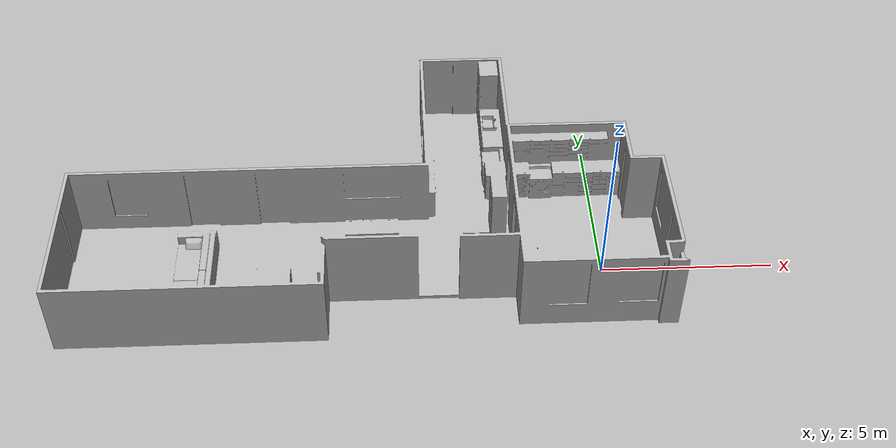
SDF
<sdf version='1.10'>
  <world name='kitchen'>
    <plugin name='gz::sim::systems::Physics' filename='gz-sim-physics-system'/>
    <plugin name='gz::sim::systems::Imu' filename='gz-sim-imu-system'/>
    <plugin name='gz::sim::systems::UserCommands' filename='gz-sim-user-commands-system'/>
    <plugin name='gz::sim::systems::SceneBroadcaster' filename='gz-sim-scene-broadcaster-system'/>
    <plugin name='gz::sim::systems::Sensors' filename='gz-sim-sensors-system'/>
    <gravity>0 0 -9.8000000000000007</gravity>
    <magnetic_field>5.5644999999999998e-06 2.2875799999999999e-05 -4.2388400000000002e-05</magnetic_field>
    <atmosphere type='adiabatic'/>
    <physics type='ode'>
      <max_step_size>0.001</max_step_size>
      <real_time_factor>1</real_time_factor>
      <real_time_update_rate>1000</real_time_update_rate>
    </physics>
    <scene>
      <ambient>0.400000006 0.400000006 0.400000006 1</ambient>
      <background>0.699999988 0.699999988 0.699999988 1</background>
      <shadows>true</shadows>
    </scene>
    <model name='ground_plane'>
      <static>true</static>
      <link name='link'>
        <collision name='collision'>
          <geometry>
            <plane>
              <normal>0 0 1</normal>
              <size>100 100</size>
            </plane>
          </geometry>
          <surface>
            <friction>
              <ode>
                <mu>100</mu>
                <mu2>50</mu2>
              </ode>
            </friction>
            <bounce/>
            <contact/>
          </surface>
        </collision>
        <visual name='visual'>
          <cast_shadows>false</cast_shadows>
          <geometry>
            <plane>
              <normal>0 0 1</normal>
              <size>100 100</size>
            </plane>
          </geometry>
          <material>
            <ambient>0.300000012 0.300000012 0.300000012 1</ambient>
            <diffuse>0.699999988 0.699999988 0.699999988 1</diffuse>
            <specular>0.00999999978 0.00999999978 0.00999999978 1</specular>
          </material>
        </visual>
        <pose>0 0 0 0 0 0</pose>
        <inertial>
          <pose>0 0 0 0 0 0</pose>
          <mass>1</mass>
          <inertia>
            <ixx>1</ixx>
            <ixy>0</ixy>
            <ixz>0</ixz>
            <iyy>1</iyy>
            <iyz>0</iyz>
            <izz>1</izz>
          </inertia>
        </inertial>
        <enable_wind>false</enable_wind>
      </link>
      <pose>0 0 0 0 0 0</pose>
      <self_collide>false</self_collide>
    </model>
    <model name='kitchen'>
      <link name='link'>
        <visual name='visual'>
          <geometry>
            <mesh>
              <uri>model://k9_robot_bringup/worlds/kitchen.obj</uri>
            </mesh>
          </geometry>
        </visual>
        <collision name='collision'>
          <geometry>
            <mesh>
              <uri>model://k9_robot_bringup/worlds/kitchen.obj</uri>
            </mesh>
          </geometry>
        </collision>
        <pose>0 0 0 0 0 0</pose>
        <inertial>
          <pose>0 0 0 0 0 0</pose>
          <mass>1</mass>
          <inertia>
            <ixx>1</ixx>
            <ixy>0</ixy>
            <ixz>0</ixz>
            <iyy>1</iyy>
            <iyz>0</iyz>
            <izz>1</izz>
          </inertia>
        </inertial>
        <enable_wind>false</enable_wind>
      </link>
      <pose>-6.7503038068942027 2.4206152200189823 1.4247694273590279 -1.1610108490872883e-07 -3.7864941848081776e-06 5.40442320996662e-05</pose>
      <static>false</static>
      <self_collide>false</self_collide>
    </model>
    <light name='sun' type='directional'>
      <pose>0 0 10 0 0 0</pose>
      <cast_shadows>true</cast_shadows>
      <intensity>1</intensity>
      <direction>-0.5 0.10000000000000001 -0.90000000000000002</direction>
      <diffuse>0.800000012 0.800000012 0.800000012 1</diffuse>
      <specular>0.200000003 0.200000003 0.200000003 1</specular>
      <attenuation>
        <range>1000</range>
        <linear>0.0099999997764825821</linear>
        <constant>0.89999997615814209</constant>
        <quadratic>0.0010000000474974513</quadratic>
      </attenuation>
      <spot>
        <inner_angle>0</inner_angle>
        <outer_angle>0</outer_angle>
        <falloff>0</falloff>
      </spot>
    </light>
  </world>
</sdf>
